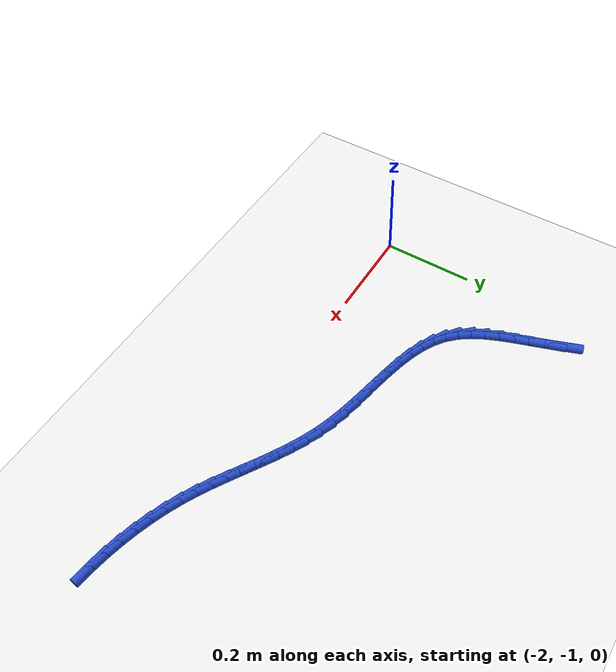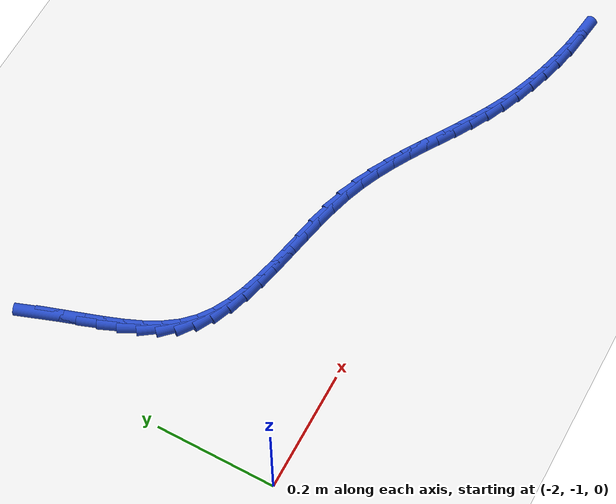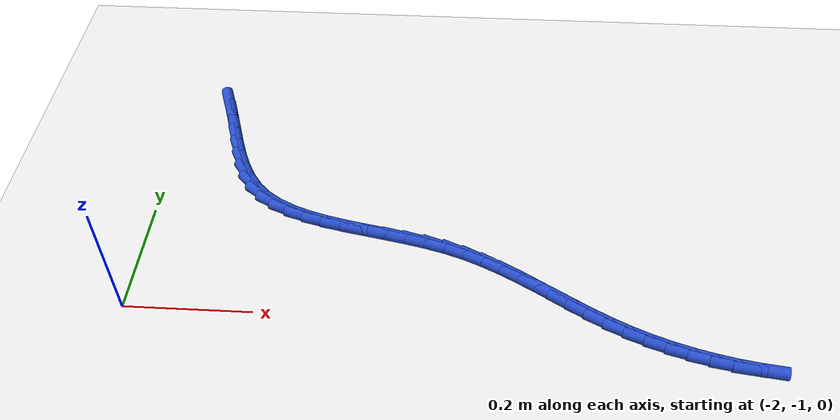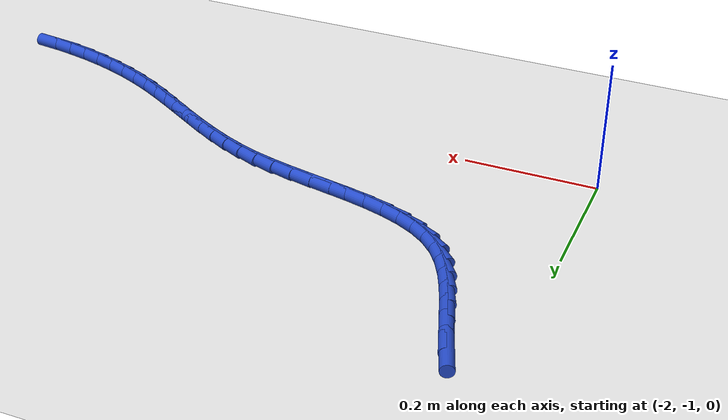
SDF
<sdf version="1.6">
 <world name="default">
  <model name="ground_plane">
   <static>1</static>
   <link name="link">
    <collision name="collision">
     <geometry><plane><normal>0 0 1</normal><size>100 100</size></plane></geometry>
     <surface><friction><ode><mu>100</mu><mu2>50</mu2></ode></friction></surface>
    </collision>
    <visual name="visual">
     <cast_shadows>0</cast_shadows>
     <geometry><plane><normal>0 0 1</normal><size>100 100</size></plane></geometry>
     <material>
      <script><uri>file://media/materials/scripts/gazebo.material</uri><name>Gazebo/WhiteGlow</name></script>
     </material>
    </visual>
   </link>
  </model>
  <model name="line">
   <link name="link_123">
    <pose>-1.9271522261662057 -0.5422223467181948 0.01 0 1.57 -1.2276845022121634</pose>
    <collision name="collision">
     <geometry><cylinder><radius>0.01</radius><length>0.08</length></cylinder></geometry>
    </collision>
    <visual name="visual">
     <material>
      <script><name>Gazebo/Blue</name><uri>file://media/materials/scripts/gazebo.material</uri></script>
     </material>
     <geometry><cylinder><radius>0.01</radius><length>0.08</length></cylinder></geometry>
    </visual>
   </link>
   <link name="link_124">
    <pose>-1.915765761977743 -0.5740956025237465 0.01 0 1.57 -1.2510714460914532</pose>
    <collision name="collision">
     <geometry><cylinder><radius>0.01</radius><length>0.08</length></cylinder></geometry>
    </collision>
    <visual name="visual">
     <material>
      <script><name>Gazebo/Blue</name><uri>file://media/materials/scripts/gazebo.material</uri></script>
     </material>
     <geometry><cylinder><radius>0.01</radius><length>0.08</length></cylinder></geometry>
    </visual>
   </link>
   <link name="link_125">
    <pose>-1.905162965873061 -0.6061200823776379 0.01 0 1.57 -1.250375404151595</pose>
    <collision name="collision">
     <geometry><cylinder><radius>0.01</radius><length>0.08</length></cylinder></geometry>
    </collision>
    <visual name="visual">
     <material>
      <script><name>Gazebo/Blue</name><uri>file://media/materials/scripts/gazebo.material</uri></script>
     </material>
     <geometry><cylinder><radius>0.01</radius><length>0.08</length></cylinder></geometry>
    </visual>
   </link>
   <link name="link_126">
    <pose>-1.8946858509842048 -0.6376912920800047 0.01 0 1.57 -1.2245277976718114</pose>
    <collision name="collision">
     <geometry><cylinder><radius>0.01</radius><length>0.08</length></cylinder></geometry>
    </collision>
    <visual name="visual">
     <material>
      <script><name>Gazebo/Blue</name><uri>file://media/materials/scripts/gazebo.material</uri></script>
     </material>
     <geometry><cylinder><radius>0.01</radius><length>0.08</length></cylinder></geometry>
    </visual>
   </link>
   <link name="link_127">
    <pose>-1.8836764304432185 -0.6682047374309842 0.01 0 1.57 -1.1707484887882151</pose>
    <collision name="collision">
     <geometry><cylinder><radius>0.01</radius><length>0.08</length></cylinder></geometry>
    </collision>
    <visual name="visual">
     <material>
      <script><name>Gazebo/Blue</name><uri>file://media/materials/scripts/gazebo.material</uri></script>
     </material>
     <geometry><cylinder><radius>0.01</radius><length>0.08</length></cylinder></geometry>
    </visual>
   </link>
   <link name="link_128">
    <pose>-1.8714767173821458 -0.6970559242307128 0.01 0 1.57 -1.0846648332478863</pose>
    <collision name="collision">
     <geometry><cylinder><radius>0.01</radius><length>0.08</length></cylinder></geometry>
    </collision>
    <visual name="visual">
     <material>
      <script><name>Gazebo/Blue</name><uri>file://media/materials/scripts/gazebo.material</uri></script>
     </material>
     <geometry><cylinder><radius>0.01</radius><length>0.08</length></cylinder></geometry>
    </visual>
   </link>
   <link name="link_129">
    <pose>-1.8574287249330317 -0.7236403582793275 0.01 0 1.57 -0.961344321348398</pose>
    <collision name="collision">
     <geometry><cylinder><radius>0.01</radius><length>0.08</length></cylinder></geometry>
    </collision>
    <visual name="visual">
     <material>
      <script><name>Gazebo/Blue</name><uri>file://media/materials/scripts/gazebo.material</uri></script>
     </material>
     <geometry><cylinder><radius>0.01</radius><length>0.08</length></cylinder></geometry>
    </visual>
   </link>
   <link name="link_130">
    <pose>-1.8408744662279202 -0.7473535453769652 0.01 0 1.57 -0.7991631389105909</pose>
    <collision name="collision">
     <geometry><cylinder><radius>0.01</radius><length>0.08</length></cylinder></geometry>
    </collision>
    <visual name="visual">
     <material>
      <script><name>Gazebo/Blue</name><uri>file://media/materials/scripts/gazebo.material</uri></script>
     </material>
     <geometry><cylinder><radius>0.01</radius><length>0.08</length></cylinder></geometry>
    </visual>
   </link>
   <link name="link_131">
    <pose>-1.821171288162189 -0.7676067569066237 0.01 0 1.57 -0.6281732824559855</pose>
    <collision name="collision">
     <geometry><cylinder><radius>0.01</radius><length>0.08</length></cylinder></geometry>
    </collision>
    <visual name="visual">
     <material>
      <script><name>Gazebo/Blue</name><uri>file://media/materials/scripts/gazebo.material</uri></script>
     </material>
     <geometry><cylinder><radius>0.01</radius><length>0.08</length></cylinder></geometry>
    </visual>
   </link>
   <link name="link_132">
    <pose>-1.7981668331787002 -0.7843153671849803 0.01 0 1.57 -0.4862400981056303</pose>
    <collision name="collision">
     <geometry><cylinder><radius>0.01</radius><length>0.08</length></cylinder></geometry>
    </collision>
    <visual name="visual">
     <material>
      <script><name>Gazebo/Blue</name><uri>file://media/materials/scripts/gazebo.material</uri></script>
     </material>
     <geometry><cylinder><radius>0.01</radius><length>0.08</length></cylinder></geometry>
    </visual>
   </link>
   <link name="link_133">
    <pose>-1.7722904253590281 -0.7979928131096269 0.01 0 1.57 -0.37685425965287883</pose>
    <collision name="collision">
     <geometry><cylinder><radius>0.01</radius><length>0.08</length></cylinder></geometry>
    </collision>
    <visual name="visual">
     <material>
      <script><name>Gazebo/Blue</name><uri>file://media/materials/scripts/gazebo.material</uri></script>
     </material>
     <geometry><cylinder><radius>0.01</radius><length>0.08</length></cylinder></geometry>
    </visual>
   </link>
   <link name="link_134">
    <pose>-1.744005167298876 -0.8091872613409612 0.01 0 1.57 -0.2972223131966332</pose>
    <collision name="collision">
     <geometry><cylinder><radius>0.01</radius><length>0.08</length></cylinder></geometry>
    </collision>
    <visual name="visual">
     <material>
      <script><name>Gazebo/Blue</name><uri>file://media/materials/scripts/gazebo.material</uri></script>
     </material>
     <geometry><cylinder><radius>0.01</radius><length>0.08</length></cylinder></geometry>
    </visual>
   </link>
   <link name="link_135">
    <pose>-1.713774161593947 -0.8184468785393814 0.01 0 1.57 -0.24333208645946955</pose>
    <collision name="collision">
     <geometry><cylinder><radius>0.01</radius><length>0.08</length></cylinder></geometry>
    </collision>
    <visual name="visual">
     <material>
      <script><name>Gazebo/Blue</name><uri>file://media/materials/scripts/gazebo.material</uri></script>
     </material>
     <geometry><cylinder><radius>0.01</radius><length>0.08</length></cylinder></geometry>
    </visual>
   </link>
   <link name="link_136">
    <pose>-1.6820605108399451 -0.8263198313652845 0.01 0 1.57 -0.2116832597439761</pose>
    <collision name="collision">
     <geometry><cylinder><radius>0.01</radius><length>0.08</length></cylinder></geometry>
    </collision>
    <visual name="visual">
     <material>
      <script><name>Gazebo/Blue</name><uri>file://media/materials/scripts/gazebo.material</uri></script>
     </material>
     <geometry><cylinder><radius>0.01</radius><length>0.08</length></cylinder></geometry>
    </visual>
   </link>
   <link name="link_137">
    <pose>-1.6493273176325745 -0.8333542864790692 0.01 0 1.57 -0.19988404451143776</pose>
    <collision name="collision">
     <geometry><cylinder><radius>0.01</radius><length>0.08</length></cylinder></geometry>
    </collision>
    <visual name="visual">
     <material>
      <script><name>Gazebo/Blue</name><uri>file://media/materials/scripts/gazebo.material</uri></script>
     </material>
     <geometry><cylinder><radius>0.01</radius><length>0.08</length></cylinder></geometry>
    </visual>
   </link>
   <link name="link_138">
    <pose>-1.6160376845675373 -0.8400984105411322 0.01 0 1.57 -0.2067493455402264</pose>
    <collision name="collision">
     <geometry><cylinder><radius>0.01</radius><length>0.08</length></cylinder></geometry>
    </collision>
    <visual name="visual">
     <material>
      <script><name>Gazebo/Blue</name><uri>file://media/materials/scripts/gazebo.material</uri></script>
     </material>
     <geometry><cylinder><radius>0.01</radius><length>0.08</length></cylinder></geometry>
    </visual>
   </link>
   <link name="link_139">
    <pose>-1.5826547142405394 -0.8471003702118718 0.01 0 1.57 -0.23224270602856495</pose>
    <collision name="collision">
     <geometry><cylinder><radius>0.01</radius><length>0.08</length></cylinder></geometry>
    </collision>
    <visual name="visual">
     <material>
      <script><name>Gazebo/Blue</name><uri>file://media/materials/scripts/gazebo.material</uri></script>
     </material>
     <geometry><cylinder><radius>0.01</radius><length>0.08</length></cylinder></geometry>
    </visual>
   </link>
   <link name="link_140">
    <pose>-1.5496415092472842 -0.8549083321516858 0.01 0 1.57 -0.2773728512154233</pose>
    <collision name="collision">
     <geometry><cylinder><radius>0.01</radius><length>0.08</length></cylinder></geometry>
    </collision>
    <visual name="visual">
     <material>
      <script><name>Gazebo/Blue</name><uri>file://media/materials/scripts/gazebo.material</uri></script>
     </material>
     <geometry><cylinder><radius>0.01</radius><length>0.08</length></cylinder></geometry>
    </visual>
   </link>
   <link name="link_141">
    <pose>-1.5174611721834745 -0.8640704630209717 0.01 0 1.57 -0.3428709488620042</pose>
    <collision name="collision">
     <geometry><cylinder><radius>0.01</radius><length>0.08</length></cylinder></geometry>
    </collision>
    <visual name="visual">
     <material>
      <script><name>Gazebo/Blue</name><uri>file://media/materials/scripts/gazebo.material</uri></script>
     </material>
     <geometry><cylinder><radius>0.01</radius><length>0.08</length></cylinder></geometry>
    </visual>
   </link>
   <link name="link_142">
    <pose>-1.486552896453165 -0.8751038013594635 0.01 0 1.57 -0.41204835850541754</pose>
    <collision name="collision">
     <geometry><cylinder><radius>0.01</radius><length>0.08</length></cylinder></geometry>
    </collision>
    <visual name="visual">
     <material>
      <script><name>Gazebo/Blue</name><uri>file://media/materials/scripts/gazebo.material</uri></script>
     </material>
     <geometry><cylinder><radius>0.01</radius><length>0.08</length></cylinder></geometry>
    </visual>
   </link>
   <link name="link_143">
    <pose>-1.4569760704053167 -0.8880309056861302 0.01 0 1.57 -0.4693176896918656</pose>
    <collision name="collision">
     <geometry><cylinder><radius>0.01</radius><length>0.08</length></cylinder></geometry>
    </collision>
    <visual name="visual">
     <material>
      <script><name>Gazebo/Blue</name><uri>file://media/materials/scripts/gazebo.material</uri></script>
     </material>
     <geometry><cylinder><radius>0.01</radius><length>0.08</length></cylinder></geometry>
    </visual>
   </link>
   <link name="link_144">
    <pose>-1.428486001776951 -0.902478442508258 0.01 0 1.57 -0.5131234020962</pose>
    <collision name="collision">
     <geometry><cylinder><radius>0.01</radius><length>0.08</length></cylinder></geometry>
    </collision>
    <visual name="visual">
     <material>
      <script><name>Gazebo/Blue</name><uri>file://media/materials/scripts/gazebo.material</uri></script>
     </material>
     <geometry><cylinder><radius>0.01</radius><length>0.08</length></cylinder></geometry>
    </visual>
   </link>
   <link name="link_145">
    <pose>-1.4008294691393863 -0.9180619739468812 0.01 0 1.57 -0.5428425959505145</pose>
    <collision name="collision">
     <geometry><cylinder><radius>0.01</radius><length>0.08</length></cylinder></geometry>
    </collision>
    <visual name="visual">
     <material>
      <script><name>Gazebo/Blue</name><uri>file://media/materials/scripts/gazebo.material</uri></script>
     </material>
     <geometry><cylinder><radius>0.01</radius><length>0.08</length></cylinder></geometry>
    </visual>
   </link>
   <link name="link_146">
    <pose>-1.3737532510639445 -0.9343970621230323 0.01 0 1.57 -0.5581691752128007</pose>
    <collision name="collision">
     <geometry><cylinder><radius>0.01</radius><length>0.08</length></cylinder></geometry>
    </collision>
    <visual name="visual">
     <material>
      <script><name>Gazebo/Blue</name><uri>file://media/materials/scripts/gazebo.material</uri></script>
     </material>
     <geometry><cylinder><radius>0.01</radius><length>0.08</length></cylinder></geometry>
    </visual>
   </link>
   <link name="link_147">
    <pose>-1.3470041261219452 -0.9510992691577463 0.01 0 1.57 -0.5589457734124278</pose>
    <collision name="collision">
     <geometry><cylinder><radius>0.01</radius><length>0.08</length></cylinder></geometry>
    </collision>
    <visual name="visual">
     <material>
      <script><name>Gazebo/Blue</name><uri>file://media/materials/scripts/gazebo.material</uri></script>
     </material>
     <geometry><cylinder><radius>0.01</radius><length>0.08</length></cylinder></geometry>
    </visual>
   </link>
   <link name="link_148">
    <pose>-1.3203288728847093 -0.9677841571720566 0.01 0 1.57 -0.5450712551023162</pose>
    <collision name="collision">
     <geometry><cylinder><radius>0.01</radius><length>0.08</length></cylinder></geometry>
    </collision>
    <visual name="visual">
     <material>
      <script><name>Gazebo/Blue</name><uri>file://media/materials/scripts/gazebo.material</uri></script>
     </material>
     <geometry><cylinder><radius>0.01</radius><length>0.08</length></cylinder></geometry>
    </visual>
   </link>
   <link name="link_149">
    <pose>-1.2934742699235557 -0.9840672882869971 0.01 0 1.57 -0.5164973161276467</pose>
    <collision name="collision">
     <geometry><cylinder><radius>0.01</radius><length>0.08</length></cylinder></geometry>
    </collision>
    <visual name="visual">
     <material>
      <script><name>Gazebo/Blue</name><uri>file://media/materials/scripts/gazebo.material</uri></script>
     </material>
     <geometry><cylinder><radius>0.01</radius><length>0.08</length></cylinder></geometry>
    </visual>
   </link>
   <link name="link_150">
    <pose>-1.2661870958098054 -0.9995642246236016 0.01 0 1.57 -0.47335832735883365</pose>
    <collision name="collision">
     <geometry><cylinder><radius>0.01</radius><length>0.08</length></cylinder></geometry>
    </collision>
    <visual name="visual">
     <material>
      <script><name>Gazebo/Blue</name><uri>file://media/materials/scripts/gazebo.material</uri></script>
     </material>
     <geometry><cylinder><radius>0.01</radius><length>0.08</length></cylinder></geometry>
    </visual>
   </link>
   <link name="link_151">
    <pose>-1.2382150073086093 -1.0138914726075459 0.01 0 1.57 -0.42100858054071527</pose>
    <collision name="collision">
     <geometry><cylinder><radius>0.01</radius><length>0.08</length></cylinder></geometry>
    </collision>
    <visual name="visual">
     <material>
      <script><name>Gazebo/Blue</name><uri>file://media/materials/scripts/gazebo.material</uri></script>
     </material>
     <geometry><cylinder><radius>0.01</radius><length>0.08</length></cylinder></geometry>
    </visual>
   </link>
   <link name="link_152">
    <pose>-1.2094179626296855 -1.0267862942101267 0.01 0 1.57 -0.36941268906473373</pose>
    <collision name="collision">
     <geometry><cylinder><radius>0.01</radius><length>0.08</length></cylinder></geometry>
    </collision>
    <visual name="visual">
     <material>
      <script><name>Gazebo/Blue</name><uri>file://media/materials/scripts/gazebo.material</uri></script>
     </material>
     <geometry><cylinder><radius>0.01</radius><length>0.08</length></cylinder></geometry>
    </visual>
   </link>
   <link name="link_153">
    <pose>-1.1798773526316608 -1.0382240535966256 0.01 0 1.57 -0.31951106363570175</pose>
    <collision name="collision">
     <geometry><cylinder><radius>0.01</radius><length>0.08</length></cylinder></geometry>
    </collision>
    <visual name="visual">
     <material>
      <script><name>Gazebo/Blue</name><uri>file://media/materials/scripts/gazebo.material</uri></script>
     </material>
     <geometry><cylinder><radius>0.01</radius><length>0.08</length></cylinder></geometry>
    </visual>
   </link>
   <link name="link_154">
    <pose>-1.1497004798625667 -1.0482079772648525 0.01 0 1.57 -0.2710652555542463</pose>
    <collision name="collision">
     <geometry><cylinder><radius>0.01</radius><length>0.08</length></cylinder></geometry>
    </collision>
    <visual name="visual">
     <material>
      <script><name>Gazebo/Blue</name><uri>file://media/materials/scripts/gazebo.material</uri></script>
     </material>
     <geometry><cylinder><radius>0.01</radius><length>0.08</length></cylinder></geometry>
    </visual>
   </link>
   <link name="link_155">
    <pose>-1.1189946468704353 -1.0567412917126173 0.01 0 1.57 -0.22382793757732689</pose>
    <collision name="collision">
     <geometry><cylinder><radius>0.01</radius><length>0.08</length></cylinder></geometry>
    </collision>
    <visual name="visual">
     <material>
      <script><name>Gazebo/Blue</name><uri>file://media/materials/scripts/gazebo.material</uri></script>
     </material>
     <geometry><cylinder><radius>0.01</radius><length>0.08</length></cylinder></geometry>
    </visual>
   </link>
   <link name="link_156">
    <pose>-1.0878671562032987 -1.063827223437731 0.01 0 1.57 -0.17754585929597175</pose>
    <collision name="collision">
     <geometry><cylinder><radius>0.01</radius><length>0.08</length></cylinder></geometry>
    </collision>
    <visual name="visual">
     <material>
      <script><name>Gazebo/Blue</name><uri>file://media/materials/scripts/gazebo.material</uri></script>
     </material>
     <geometry><cylinder><radius>0.01</radius><length>0.08</length></cylinder></geometry>
    </visual>
   </link>
   <link name="link_157">
    <pose>-1.0564253104091894 -1.0694689989380046 0.01 0 1.57 -0.13203184313995336</pose>
    <collision name="collision">
     <geometry><cylinder><radius>0.01</radius><length>0.08</length></cylinder></geometry>
    </collision>
    <visual name="visual">
     <material>
      <script><name>Gazebo/Blue</name><uri>file://media/materials/scripts/gazebo.material</uri></script>
     </material>
     <geometry><cylinder><radius>0.01</radius><length>0.08</length></cylinder></geometry>
    </visual>
   </link>
  </model>
 </world>
</sdf>
